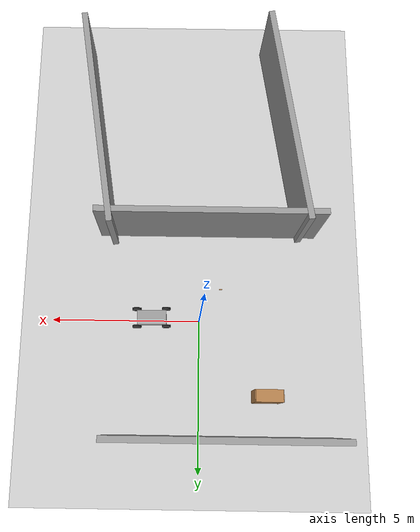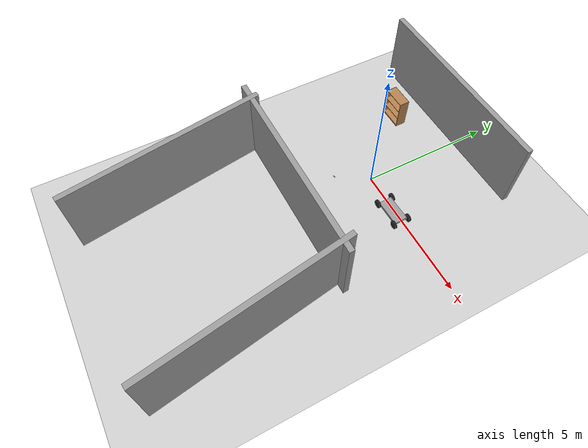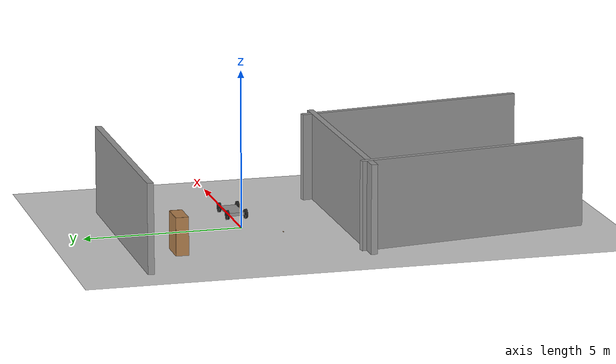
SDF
<sdf version="1.7">
 <world name="default">
  <light name="sun" type="directional">
   <pose>0 0 10 0 -0 0</pose>
   <diffuse>0.8 0.8 0.8 1</diffuse>
   <specular>0.2 0.2 0.2 1</specular>
   <attenuation>
    <range>1000</range>
    <constant>0.9</constant>
    <linear>0.01</linear>
    <quadratic>0.001</quadratic>
   </attenuation>
   <direction>-0.5 0.1 -0.9</direction>
   <spot><inner_angle>0</inner_angle><outer_angle>0</outer_angle><falloff>0</falloff></spot>
  </light>
  <model name="ground_plane">
   <static>1</static>
   <link name="link">
    <collision name="collision">
     <geometry><plane><normal>0 0 1</normal><size>100 100</size></plane></geometry>
     <surface>
      <contact><collide_bitmask>65535</collide_bitmask></contact>
      <friction><ode><mu>100</mu><mu2>50</mu2></ode></friction>
     </surface>
    </collision>
    <visual name="visual">
     <cast_shadows>0</cast_shadows>
     <geometry><plane><normal>0 0 1</normal><size>100 100</size></plane></geometry>
     <material>
      <script><uri>file://media/materials/scripts/gazebo.material</uri><name>Gazebo/Grey</name></script>
     </material>
    </visual>
   </link>
  </model>
  <gravity>0 0 -9</gravity>
  <magnetic_field>6e-06 2.3e-05 -4.2e-05</magnetic_field>
  <atmosphere type="adiabatic"/>
  <physics type="ode">
   <max_step_size>0.001</max_step_size>
   <real_time_factor>1</real_time_factor>
   <real_time_update_rate>1000</real_time_update_rate>
  </physics>
  <scene><ambient>0.4 0.4 0.4 1</ambient><background>0.7 0.7 0.7 1</background><shadows>1</shadows></scene>
  <audio><device>default</device></audio>
  <spherical_coordinates>
   <surface_model>EARTH_WGS84</surface_model>
   <latitude_deg>0</latitude_deg>
   <longitude_deg>0</longitude_deg>
   <elevation>0</elevation>
   <heading_deg>0</heading_deg>
  </spherical_coordinates>
  <model name="bookshelf">
   <static>1</static>
   <link name="link">
    <inertial><mass>1</mass></inertial>
    <collision name="back">
     <pose>0 0.005 0.6 0 -0 0</pose>
     <geometry><box><size>0.9 0.01 1.2</size></box></geometry>
    </collision>
    <visual name="visual1">
     <pose>0 0.005 0.6 0 -0 0</pose>
     <geometry><box><size>0.9 0.01 1.2</size></box></geometry>
     <material>
      <script><uri>file://media/materials/scripts/gazebo.material</uri><name>Gazebo/Wood</name></script>
     </material>
    </visual>
    <collision name="left_side">
     <pose>0.45 -0.195 0.6 0 -0 0</pose>
     <geometry><box><size>0.02 0.4 1.2</size></box></geometry>
    </collision>
    <visual name="visual2">
     <pose>0.45 -0.195 0.6 0 -0 0</pose>
     <geometry><box><size>0.02 0.4 1.2</size></box></geometry>
     <material>
      <script><uri>file://media/materials/scripts/gazebo.material</uri><name>Gazebo/Wood</name></script>
     </material>
    </visual>
    <collision name="right_side">
     <pose>-0.45 -0.195 0.6 0 -0 0</pose>
     <geometry><box><size>0.02 0.4 1.2</size></box></geometry>
    </collision>
    <visual name="visual3">
     <pose>-0.45 -0.195 0.6 0 -0 0</pose>
     <geometry><box><size>0.02 0.4 1.2</size></box></geometry>
     <material>
      <script><uri>file://media/materials/scripts/gazebo.material</uri><name>Gazebo/Wood</name></script>
     </material>
    </visual>
    <collision name="bottom">
     <pose>0 -0.195 0.03 0 -0 0</pose>
     <geometry><box><size>0.88 0.4 0.06</size></box></geometry>
    </collision>
    <visual name="visual4">
     <pose>0 -0.195 0.03 0 -0 0</pose>
     <geometry><box><size>0.88 0.4 0.06</size></box></geometry>
     <material>
      <script><uri>file://media/materials/scripts/gazebo.material</uri><name>Gazebo/Wood</name></script>
     </material>
    </visual>
    <collision name="top">
     <pose>0 -0.195 1.19 0 -0 0</pose>
     <geometry><box><size>0.88 0.4 0.02</size></box></geometry>
    </collision>
    <visual name="visual5">
     <pose>0 -0.195 1.19 0 -0 0</pose>
     <geometry><box><size>0.88 0.4 0.02</size></box></geometry>
     <material>
      <script><uri>file://media/materials/scripts/gazebo.material</uri><name>Gazebo/Wood</name></script>
     </material>
    </visual>
    <collision name="low_shelf">
     <pose>0 -0.195 0.43 0 -0 0</pose>
     <geometry><box><size>0.88 0.4 0.02</size></box></geometry>
    </collision>
    <visual name="visual6">
     <pose>0 -0.195 0.43 0 -0 0</pose>
     <geometry><box><size>0.88 0.4 0.02</size></box></geometry>
     <material>
      <script><uri>file://media/materials/scripts/gazebo.material</uri><name>Gazebo/Wood</name></script>
     </material>
    </visual>
    <collision name="high_shelf">
     <pose>0 -0.195 0.8 0 -0 0</pose>
     <geometry><box><size>0.88 0.4 0.02</size></box></geometry>
    </collision>
    <visual name="visual7">
     <pose>0 -0.195 0.8 0 -0 0</pose>
     <geometry><box><size>0.88 0.4 0.02</size></box></geometry>
     <material>
      <script><uri>file://media/materials/scripts/gazebo.material</uri><name>Gazebo/Wood</name></script>
     </material>
    </visual>
   </link>
   <pose>-2.22098 2.69531 0 0 -0 0</pose>
  </model>
  <model name="cart_rigid_suspension">
   <link name="chassis">
    <pose>0 0 0.15 0 -0 0</pose>
    <inertial>
     <pose>0.1 0 0 0 -0 0</pose>
     <mass>10</mass>
     <inertia>
      <ixx>0.216667</ixx>
      <iyy>0.841667</iyy>
      <izz>1.04167</izz>
      <ixy>0</ixy>
      <ixz>0</ixz>
      <iyz>0</iyz>
     </inertia>
    </inertial>
    <collision name="collision"><geometry><box><size>1 0.5 0.1</size></box></geometry></collision>
    <visual name="visual">
     <geometry><box><size>1 0.5 0.1</size></box></geometry>
     <material>
      <script><uri>file://media/materials/scripts/gazebo.material</uri><name>Gazebo/Grey</name></script>
     </material>
    </visual>
   </link>
   <link name="wheel_front_left">
    <pose>0.5 0.298 0.15 -1.5708 0 0</pose>
    <inertial>
     <mass>0.5</mass>
     <inertia>
      <ixx>0.00307917</ixx>
      <iyy>0.00307917</iyy>
      <izz>0.005625</izz>
      <ixy>0</ixy>
      <ixz>0</ixz>
      <iyz>0</iyz>
     </inertia>
    </inertial>
    <collision name="collision">
     <geometry><cylinder><radius>0.15</radius><length>0.08</length></cylinder></geometry>
    </collision>
    <visual name="visual">
     <geometry><cylinder><radius>0.15</radius><length>0.08</length></cylinder></geometry>
     <material>
      <script><uri>file://media/materials/scripts/gazebo.material</uri><name>Gazebo/Black</name></script>
     </material>
    </visual>
   </link>
   <joint name="wheel_front_left_spin" type="revolute">
    <parent>chassis</parent>
    <child>wheel_front_left</child>
    <axis>
     <xyz>0 0 1</xyz>
     <limit><lower>-1e+16</lower><upper>1e+16</upper></limit>
     <dynamics><spring_reference>0</spring_reference><spring_stiffness>0</spring_stiffness></dynamics>
    </axis>
   </joint>
   <link name="wheel_front_right">
    <pose>0.5 -0.298 0.15 -1.5708 0 0</pose>
    <inertial>
     <mass>0.5</mass>
     <inertia>
      <ixx>0.00307917</ixx>
      <iyy>0.00307917</iyy>
      <izz>0.005625</izz>
      <ixy>0</ixy>
      <ixz>0</ixz>
      <iyz>0</iyz>
     </inertia>
    </inertial>
    <collision name="collision">
     <geometry><cylinder><radius>0.15</radius><length>0.08</length></cylinder></geometry>
    </collision>
    <visual name="visual">
     <geometry><cylinder><radius>0.15</radius><length>0.08</length></cylinder></geometry>
     <material>
      <script><uri>file://media/materials/scripts/gazebo.material</uri><name>Gazebo/Black</name></script>
     </material>
    </visual>
   </link>
   <joint name="wheel_front_right_spin" type="revolute">
    <parent>chassis</parent>
    <child>wheel_front_right</child>
    <axis>
     <xyz>0 0 1</xyz>
     <limit><lower>-1e+16</lower><upper>1e+16</upper></limit>
     <dynamics><spring_reference>0</spring_reference><spring_stiffness>0</spring_stiffness></dynamics>
    </axis>
   </joint>
   <link name="wheel_rear_left">
    <pose>-0.5 0.298 0.15 -1.5708 0 0</pose>
    <inertial>
     <mass>0.5</mass>
     <inertia>
      <ixx>0.00307917</ixx>
      <iyy>0.00307917</iyy>
      <izz>0.005625</izz>
      <ixy>0</ixy>
      <ixz>0</ixz>
      <iyz>0</iyz>
     </inertia>
    </inertial>
    <collision name="collision">
     <geometry><cylinder><radius>0.15</radius><length>0.08</length></cylinder></geometry>
    </collision>
    <visual name="visual">
     <geometry><cylinder><radius>0.15</radius><length>0.08</length></cylinder></geometry>
     <material>
      <script><uri>file://media/materials/scripts/gazebo.material</uri><name>Gazebo/Black</name></script>
     </material>
    </visual>
   </link>
   <joint name="wheel_rear_left_spin" type="revolute">
    <parent>chassis</parent>
    <child>wheel_rear_left</child>
    <axis>
     <xyz>0 0 1</xyz>
     <limit><lower>-1e+16</lower><upper>1e+16</upper></limit>
     <dynamics><spring_reference>0</spring_reference><spring_stiffness>0</spring_stiffness></dynamics>
    </axis>
   </joint>
   <link name="wheel_rear_right">
    <pose>-0.5 -0.298 0.15 -1.5708 0 0</pose>
    <inertial>
     <mass>0.5</mass>
     <inertia>
      <ixx>0.00307917</ixx>
      <iyy>0.00307917</iyy>
      <izz>0.005625</izz>
      <ixy>0</ixy>
      <ixz>0</ixz>
      <iyz>0</iyz>
     </inertia>
    </inertial>
    <collision name="collision">
     <geometry><cylinder><radius>0.15</radius><length>0.08</length></cylinder></geometry>
    </collision>
    <visual name="visual">
     <geometry><cylinder><radius>0.15</radius><length>0.08</length></cylinder></geometry>
     <material>
      <script><uri>file://media/materials/scripts/gazebo.material</uri><name>Gazebo/Black</name></script>
     </material>
    </visual>
   </link>
   <joint name="wheel_rear_right_spin" type="revolute">
    <parent>chassis</parent>
    <child>wheel_rear_right</child>
    <axis>
     <xyz>0 0 1</xyz>
     <limit><lower>-1e+16</lower><upper>1e+16</upper></limit>
     <dynamics><spring_reference>0</spring_reference><spring_stiffness>0</spring_stiffness></dynamics>
    </axis>
   </joint>
   <pose>1.61627 -0.101487 -6e-06 0 -1.3e-05 0.021442</pose>
  </model>
  <model name="wood_block_10_2_1cm">
   <link name="link">
    <pose>0 0 0.005 0 -0 0</pose>
    <inertial>
     <mass>0.0125</mass>
     <inertia>
      <ixx>7.55208e-07</ixx>
      <ixy>0</ixy>
      <ixz>0</ixz>
      <iyy>1.05208e-05</iyy>
      <iyz>0</iyz>
      <izz>1.10677e-05</izz>
     </inertia>
    </inertial>
    <collision name="collision">
     <geometry><box><size>0.1 0.025 0.01</size></box></geometry>
     <surface>
      <contact>
       <poissons_ratio>0.347</poissons_ratio>
       <elastic_modulus>8.8e+09</elastic_modulus>
       <ode><kp>100000</kp><kd>1</kd><max_vel>1</max_vel><min_depth>0.001</min_depth></ode>
      </contact>
      <friction>
       <torsional>
        <coefficient>1</coefficient>
        <use_patch_radius>0</use_patch_radius>
        <surface_radius>0.05</surface_radius>
       </torsional>
      </friction>
     </surface>
    </collision>
    <visual name="visual">
     <geometry><box><size>0.1 0.025 0.01</size></box></geometry>
     <material>
      <script><uri>file://media/materials/scripts/gazebo.material</uri><name>Gazebo/Wood</name></script>
     </material>
    </visual>
   </link>
   <pose>-0.749409 -1.14063 -0.001 0 -0 0</pose>
  </model>
  <model name="grey_wall">
   <static>1</static>
   <link name="link">
    <pose>0 0 1.4 0 -0 0</pose>
    <collision name="collision"><geometry><box><size>7.5 0.2 2.8</size></box></geometry></collision>
    <visual name="visual">
     <cast_shadows>0</cast_shadows>
     <geometry><box><size>7.5 0.2 2.8</size></box></geometry>
     <material>
      <script>
       <uri>model://grey_wall/materials/scripts</uri>
       <uri>model://grey_wall/materials/textures</uri>
       <name>vrc/grey_wall</name>
      </script>
     </material>
    </visual>
   </link>
   <pose>-0.721985 3.86937 0 0 -0 0</pose>
  </model>
  <model name="grey_wall_clone">
   <static>1</static>
   <link name="link">
    <pose>0 0 1.4 0 -0 0</pose>
    <collision name="collision"><geometry><box><size>7.5 0.2 2.8</size></box></geometry></collision>
    <visual name="visual">
     <cast_shadows>0</cast_shadows>
     <geometry><box><size>7.5 0.2 2.8</size></box></geometry>
     <material>
      <script>
       <uri>model://grey_wall/materials/scripts</uri>
       <uri>model://grey_wall/materials/textures</uri>
       <name>vrc/grey_wall</name>
      </script>
     </material>
    </visual>
   </link>
   <pose>-0.289676 -3.13756 0 0 -0 0</pose>
  </model>
  <model name="grey_wall_clone_0">
   <static>1</static>
   <link name="link">
    <pose>0 0 1.4 0 -0 0</pose>
    <collision name="collision"><geometry><box><size>7.5 0.2 2.8</size></box></geometry></collision>
    <visual name="visual">
     <cast_shadows>0</cast_shadows>
     <geometry><box><size>7.5 0.2 2.8</size></box></geometry>
     <material>
      <script>
       <uri>model://grey_wall/materials/scripts</uri>
       <uri>model://grey_wall/materials/textures</uri>
       <name>vrc/grey_wall</name>
      </script>
     </material>
    </visual>
   </link>
   <pose>-2.90199 -6.59009 0 0 0 -1.42125</pose>
  </model>
  <model name="grey_wall_clone_0_clone">
   <static>1</static>
   <link name="link">
    <pose>0 0 1.4 0 -0 0</pose>
    <collision name="collision"><geometry><box><size>7.5 0.2 2.8</size></box></geometry></collision>
    <visual name="visual">
     <cast_shadows>0</cast_shadows>
     <geometry><box><size>7.5 0.2 2.8</size></box></geometry>
     <material>
      <script>
       <uri>model://grey_wall/materials/scripts</uri>
       <uri>model://grey_wall/materials/textures</uri>
       <name>vrc/grey_wall</name>
      </script>
     </material>
    </visual>
   </link>
   <pose>3.49455 -6.43271 0 0 0 -1.42125</pose>
  </model>
 </world>
</sdf>
